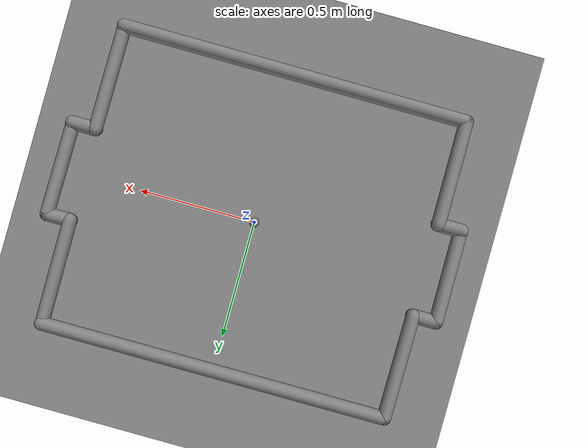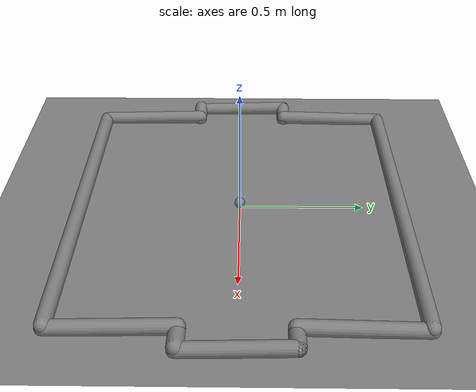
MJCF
<mujoco model="world_self_collision">
  <compiler angle="radian" inertiafromgeom="true"/>
  <default>
    <joint armature="1" damping="1" limited="true"/>
    <geom conaffinity="1" contype="1" friction="0.1 0.1 0.1"/>
  </default>
  <option gravity="0 0 0" timestep="0.01" />
  <worldbody>
    <!-- Arena -->
    <geom name="ground" pos="0 0 0" size="1 1 10" type="plane"/>
    <geom fromto="-0.75 -0.65 0.01 0.75 -0.65 0.02135" name="sideS" size=".03" type="capsule"/>
    <geom fromto="-0.75 -0.65 0.01 -0.75 -0.2 0.02135" name="sideE1" size=".03" type="capsule"/>
    <geom fromto="-0.75 0.65 0.01 -0.75 0.2 0.02135" name="sideE2" size=".03" type="capsule"/>
    <geom fromto="-0.75 0.65 0.01 0.75 0.65 0.02135" name="sideN" size=".03" type="capsule"/>
    <geom fromto="0.75 -0.65 0.01 0.75 -0.2 0.02135" name="sideW1" size=".03" type="capsule"/>
    <geom fromto="0.75 0.65 0.01 0.75 0.2 0.02135" name="sideW2" size=".03" type="capsule"/>
    <geom fromto="0.85 -0.2 0.01 0.85 0.2 0.02135" name="sideG1" size=".03" type="capsule"/>
    <geom fromto="-0.85 -0.2 0.01 -0.85 0.2 0.02135" name="sideG2" size=".03" type="capsule"/>
    <geom fromto="-0.75 -0.2 0.01 -0.85 -0.2 0.02135" name="side1" size=".03" type="capsule"/>
    <geom fromto="-0.75 0.2 0.01 -0.85 0.2 0.02135" name="side2" size=".03" type="capsule"/>
    <geom fromto="0.75 -0.2 0.01 0.85 -0.2 0.02135" name="side3" size=".03" type="capsule"/>
    <geom fromto="0.75 0.2 0.01 0.85 0.2 0.02135" name="side4" size=".03" type="capsule"/>
    <!-- Ball -->
    <body name="ball" pos="0 0 0.02135">
      <geom contype="1" conaffinity="1" name="ball" pos="0 0 0" size="0.02135" type="sphere" mass="0.046"/>
          <joint name="ball_slidey" type="slide" pos="0 0 0" axis="0 1 0" range="-0.65 0.65" damping="0.05"/>
          <joint name="ball_slidex" type="slide" pos="0 0 0" axis="1 0 0" range="-0.85 0.85" damping="0.05"/>
    </body>
  </worldbody>
</mujoco>
